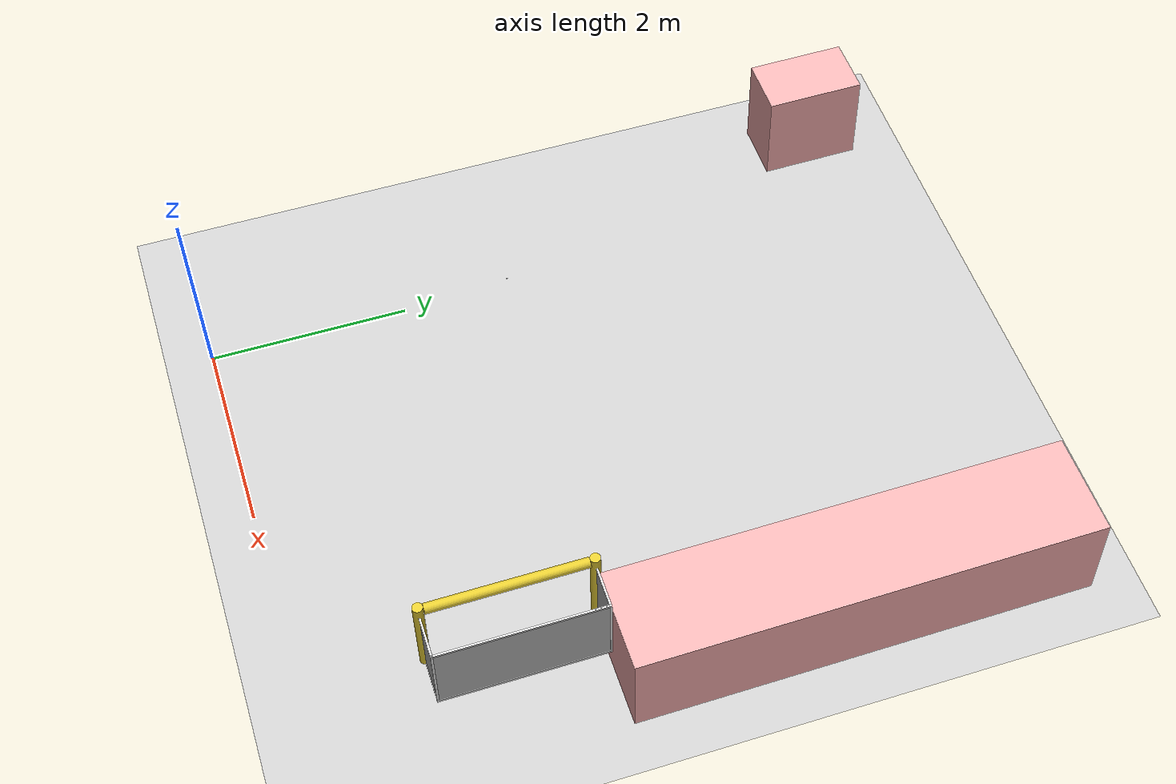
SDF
<sdf version="1.6">
 <world name="default">
  <model name="ground_plane">
   <static>1</static>
   <link name="link">
    <collision name="collision">
     <geometry><plane><normal>0 0 1</normal><size>100 100</size></plane></geometry>
     <surface><friction><ode><mu>100</mu><mu2>50</mu2></ode></friction></surface>
    </collision>
    <visual name="visual">
     <cast_shadows>0</cast_shadows>
     <geometry><plane><normal>0 0 1</normal><size>100 100</size></plane></geometry>
     <material>
      <script><uri>file://media/materials/scripts/gazebo.material</uri><name>Gazebo/Grey</name></script>
     </material>
    </visual>
   </link>
  </model>
  <model name="RoboCup 2014 SPL Goal">
   <static>1</static>
   <link name="left_post">
    <pose>0 0.8 0.45 0 -0 0</pose>
    <collision name="collision">
     <geometry><cylinder><radius>0.05</radius><length>0.9</length></cylinder></geometry>
    </collision>
    <visual name="visual">
     <geometry><cylinder><radius>0.05</radius><length>0.9</length></cylinder></geometry>
     <material>
      <script><uri>file://media/materials/scripts/gazebo.material</uri><name>Gazebo/ZincYellow</name></script>
     </material>
    </visual>
   </link>
   <link name="left_support_horiz_lower">
    <pose>0.24 0.8 0.01 0 -0 0</pose>
    <collision name="collision"><geometry><box><size>0.38 0.02 0.02</size></box></geometry></collision>
    <visual name="visual">
     <geometry><box><size>0.38 0.02 0.02</size></box></geometry>
     <material>
      <script><uri>file://media/materials/scripts/gazebo.material</uri><name>Gazebo/White</name></script>
     </material>
    </visual>
   </link>
   <link name="left_support_horiz_upper">
    <pose>0.24 0.8 0.79 0 -0 0</pose>
    <collision name="collision"><geometry><box><size>0.38 0.02 0.02</size></box></geometry></collision>
    <visual name="visual">
     <geometry><box><size>0.38 0.02 0.02</size></box></geometry>
     <material>
      <script><uri>file://media/materials/scripts/gazebo.material</uri><name>Gazebo/White</name></script>
     </material>
    </visual>
   </link>
   <link name="left_support_vertical">
    <pose>0.44 0.8 0.4 3.14159 1.57079 3.14159</pose>
    <collision name="collision"><geometry><box><size>0.8 0.02 0.02</size></box></geometry></collision>
    <visual name="visual">
     <geometry><box><size>0.8 0.02 0.02</size></box></geometry>
     <material>
      <script><uri>file://media/materials/scripts/gazebo.material</uri><name>Gazebo/White</name></script>
     </material>
    </visual>
   </link>
   <link name="right_support_horiz_lower">
    <pose>0.24 -0.8 0.01 0 -0 0</pose>
    <collision name="collision"><geometry><box><size>0.38 0.02 0.02</size></box></geometry></collision>
    <visual name="visual">
     <geometry><box><size>0.38 0.02 0.02</size></box></geometry>
     <material>
      <script><uri>file://media/materials/scripts/gazebo.material</uri><name>Gazebo/White</name></script>
     </material>
    </visual>
   </link>
   <link name="right_support_horiz_upper">
    <pose>0.24 -0.8 0.79 0 -0 0</pose>
    <collision name="collision"><geometry><box><size>0.38 0.02 0.02</size></box></geometry></collision>
    <visual name="visual">
     <geometry><box><size>0.38 0.02 0.02</size></box></geometry>
     <material>
      <script><uri>file://media/materials/scripts/gazebo.material</uri><name>Gazebo/White</name></script>
     </material>
    </visual>
   </link>
   <link name="right_support_vertical">
    <pose>0.44 -0.8 0.4 3.14159 1.57079 3.14159</pose>
    <collision name="collision"><geometry><box><size>0.8 0.02 0.02</size></box></geometry></collision>
    <visual name="visual">
     <geometry><box><size>0.8 0.02 0.02</size></box></geometry>
     <material>
      <script><uri>file://media/materials/scripts/gazebo.material</uri><name>Gazebo/White</name></script>
     </material>
    </visual>
   </link>
   <link name="center_support_horiz_lower">
    <pose>0.44 0 0.01 3.14159 1.57079 3.14159</pose>
    <collision name="collision"><geometry><box><size>0.02 1.58 0.02</size></box></geometry></collision>
    <visual name="visual">
     <geometry><box><size>0.02 1.58 0.02</size></box></geometry>
     <material>
      <script><uri>file://media/materials/scripts/gazebo.material</uri><name>Gazebo/White</name></script>
     </material>
    </visual>
   </link>
   <link name="center_support_horiz_upper">
    <pose>0.44 0 0.79 3.14159 1.57079 3.14159</pose>
    <collision name="collision"><geometry><box><size>0.02 1.58 0.02</size></box></geometry></collision>
    <visual name="visual">
     <geometry><box><size>0.02 1.58 0.02</size></box></geometry>
     <material>
      <script><uri>file://media/materials/scripts/gazebo.material</uri><name>Gazebo/White</name></script>
     </material>
    </visual>
   </link>
   <link name="right_post">
    <pose>0 -0.8 0.45 0 -0 0</pose>
    <collision name="collision">
     <geometry><cylinder><radius>0.05</radius><length>0.9</length></cylinder></geometry>
    </collision>
    <visual name="visual">
     <geometry><cylinder><radius>0.05</radius><length>0.9</length></cylinder></geometry>
     <material>
      <script><uri>file://media/materials/scripts/gazebo.material</uri><name>Gazebo/ZincYellow</name></script>
     </material>
    </visual>
   </link>
   <link name="crossbar">
    <pose>0 0 0.85 1.57 1.57 0</pose>
    <collision name="collision">
     <geometry><cylinder><radius>0.05</radius><length>1.5</length></cylinder></geometry>
    </collision>
    <visual name="visual">
     <geometry><cylinder><radius>0.05</radius><length>1.5</length></cylinder></geometry>
     <material>
      <script><uri>file://media/materials/scripts/gazebo.material</uri><name>Gazebo/ZincYellow</name></script>
     </material>
    </visual>
   </link>
   <link name="center_net">
    <pose>0.44 0 0.4 0 -0 0</pose>
    <collision name="collision"><geometry><box><size>0.01 1.6 0.8</size></box></geometry></collision>
    <visual name="visual">
     <geometry><box><size>0.01 1.6 0.8</size></box></geometry>
     <material>
      <script>
       <uri>model://robocup09_spl_field/materials/scripts/</uri>
       <uri>model://robocup09_spl_field/materials/textures/</uri>
       <name>RoboCup/Net</name>
      </script>
     </material>
    </visual>
   </link>
   <link name="left_net">
    <pose>0.24 0.8 0.4 0 -0 0</pose>
    <collision name="collision"><geometry><box><size>0.38 0.01 0.76</size></box></geometry></collision>
    <visual name="visual">
     <geometry><box><size>0.38 0.01 0.76</size></box></geometry>
     <material>
      <script>
       <uri>model://robocup09_spl_field/materials/scripts/</uri>
       <uri>model://robocup09_spl_field/materials/textures/</uri>
       <name>RoboCup/Net</name>
      </script>
     </material>
    </visual>
   </link>
   <link name="right_net">
    <pose>0.24 -0.8 0.4 0 -0 0</pose>
    <collision name="collision"><geometry><box><size>0.38 0.01 0.76</size></box></geometry></collision>
    <visual name="visual">
     <geometry><box><size>0.38 0.01 0.76</size></box></geometry>
     <material>
      <script>
       <uri>model://robocup09_spl_field/materials/scripts/</uri>
       <uri>model://robocup09_spl_field/materials/textures/</uri>
       <name>RoboCup/Net</name>
      </script>
     </material>
    </visual>
   </link>
   <pose>4.16837 1.95033 0.317711 0 -0 0</pose>
  </model>
  <model name="frc2016_ball_clone_1">
   <pose>0.026123 3.0866 0.130592 0 -0 0</pose>
   <link name="link">
    <inertial>
     <mass>0.213</mass>
     <inertia>
      <ixx>0.00322667</ixx>
      <ixy>0</ixy>
      <ixz>0</ixz>
      <iyy>0.00322667</iyy>
      <iyz>0</iyz>
      <izz>0.00322667</izz>
     </inertia>
    </inertial>
    <visual name="visual"><geometry><sphere><radius>0.00562753</radius></sphere></geometry></visual>
    <collision name="collision">
     <geometry><sphere><radius>0.00562753</radius></sphere></geometry>
     <surface>
      <bounce><restitution_coefficient>0.15937</restitution_coefficient><threshold>0</threshold></bounce>
      <contact><ode><max_vel>100</max_vel><min_depth>0.001</min_depth></ode></contact>
     </surface>
    </collision>
   </link>
  </model>
  <model name="unit_box_0_clone_0_0_clone_clone_0_clone_clone_clone_0_0">
   <link name="link">
    <inertial>
     <mass>1</mass>
     <inertia>
      <ixx>0.166667</ixx>
      <ixy>0</ixy>
      <ixz>0</ixz>
      <iyy>0.166667</iyy>
      <iyz>0</iyz>
      <izz>0.166667</izz>
     </inertia>
    </inertial>
    <visual name="visual">
     <geometry><box><size>1 0.599661 1</size></box></geometry>
     <material>
      <script><name>Gazebo/Grey</name><uri>file://media/materials/scripts/gazebo.material</uri></script>
      <ambient>0.6 0.3 0.3 1</ambient>
      <diffuse>1 0.7 0.7 1</diffuse>
      <specular>0.31 0.01 0.01 1</specular>
      <emissive>0.2 0 0 1</emissive>
      <shader type="vertex"><normal_map>__default__</normal_map></shader>
     </material>
    </visual>
    <collision name="collision">
     <geometry><box><size>1 0.599661 1</size></box></geometry>
     <surface>
      <friction>
       <ode><mu>1</mu><mu2>1</mu2><fdir1>0 0 0</fdir1><slip1>0</slip1><slip2>0</slip2></ode>
       <torsional>
        <coefficient>1</coefficient>
        <patch_radius>0</patch_radius>
        <surface_radius>0</surface_radius>
        <use_patch_radius>1</use_patch_radius>
        <ode><slip>0</slip></ode>
       </torsional>
      </friction>
      <bounce><restitution_coefficient>0</restitution_coefficient><threshold>1e+06</threshold></bounce>
      <contact>
       <collide_without_contact>0</collide_without_contact>
       <collide_without_contact_bitmask>1</collide_without_contact_bitmask>
       <collide_bitmask>1</collide_bitmask>
       <ode>
        <soft_cfm>0</soft_cfm>
        <soft_erp>0.2</soft_erp>
        <kp>1e+13</kp>
        <kd>1</kd>
        <max_vel>0.01</max_vel>
        <min_depth>0</min_depth>
       </ode>
       <bullet>
        <split_impulse>1</split_impulse>
        <split_impulse_penetration_threshold>-0.01</split_impulse_penetration_threshold>
        <soft_cfm>0</soft_cfm>
        <soft_erp>0.2</soft_erp>
        <kp>1e+13</kp>
        <kd>1</kd>
       </bullet>
      </contact>
     </surface>
    </collision>
   </link>
   <static>1</static>
   <pose>-0.953279 6.69521 0.499628 3.14159 -0.000573 1.58078</pose>
  </model>
  <model name="unit_box_0_clone_0_0_clone_clone_0_clone_clone_clone_0_clone_clone_0_0">
   <link name="link">
    <inertial>
     <mass>1</mass>
     <inertia>
      <ixx>0.166667</ixx>
      <ixy>0</ixy>
      <ixz>0</ixz>
      <iyy>0.166667</iyy>
      <iyz>0</iyz>
      <izz>0.166667</izz>
     </inertia>
    </inertial>
    <visual name="visual">
     <geometry><box><size>1 4.48154 1</size></box></geometry>
     <material>
      <script><name>Gazebo/Grey</name><uri>file://media/materials/scripts/gazebo.material</uri></script>
      <ambient>0.6 0.3 0.3 1</ambient>
      <diffuse>1 0.7 0.7 1</diffuse>
      <specular>0.31 0.01 0.01 1</specular>
      <emissive>0.3 0 0 1</emissive>
      <shader type="vertex"><normal_map>__default__</normal_map></shader>
     </material>
    </visual>
    <collision name="collision">
     <geometry><box><size>1 4.48154 1</size></box></geometry>
     <surface>
      <friction>
       <ode><mu>1</mu><mu2>1</mu2><fdir1>0 0 0</fdir1><slip1>0</slip1><slip2>0</slip2></ode>
       <torsional>
        <coefficient>1</coefficient>
        <patch_radius>0</patch_radius>
        <surface_radius>0</surface_radius>
        <use_patch_radius>1</use_patch_radius>
        <ode><slip>0</slip></ode>
       </torsional>
      </friction>
      <bounce><restitution_coefficient>0</restitution_coefficient><threshold>1e+06</threshold></bounce>
      <contact>
       <collide_without_contact>0</collide_without_contact>
       <collide_without_contact_bitmask>1</collide_without_contact_bitmask>
       <collide_bitmask>1</collide_bitmask>
       <ode>
        <soft_cfm>0</soft_cfm>
        <soft_erp>0.2</soft_erp>
        <kp>1e+13</kp>
        <kd>1</kd>
        <max_vel>0.01</max_vel>
        <min_depth>0</min_depth>
       </ode>
       <bullet>
        <split_impulse>1</split_impulse>
        <split_impulse_penetration_threshold>-0.01</split_impulse_penetration_threshold>
        <soft_cfm>0</soft_cfm>
        <soft_erp>0.2</soft_erp>
        <kp>1e+13</kp>
        <kd>1</kd>
       </bullet>
      </contact>
     </surface>
    </collision>
   </link>
   <static>1</static>
   <pose>4.68506 5.01169 0.49975 -3.14102 -0 0.006143</pose>
  </model>
 </world>
</sdf>
